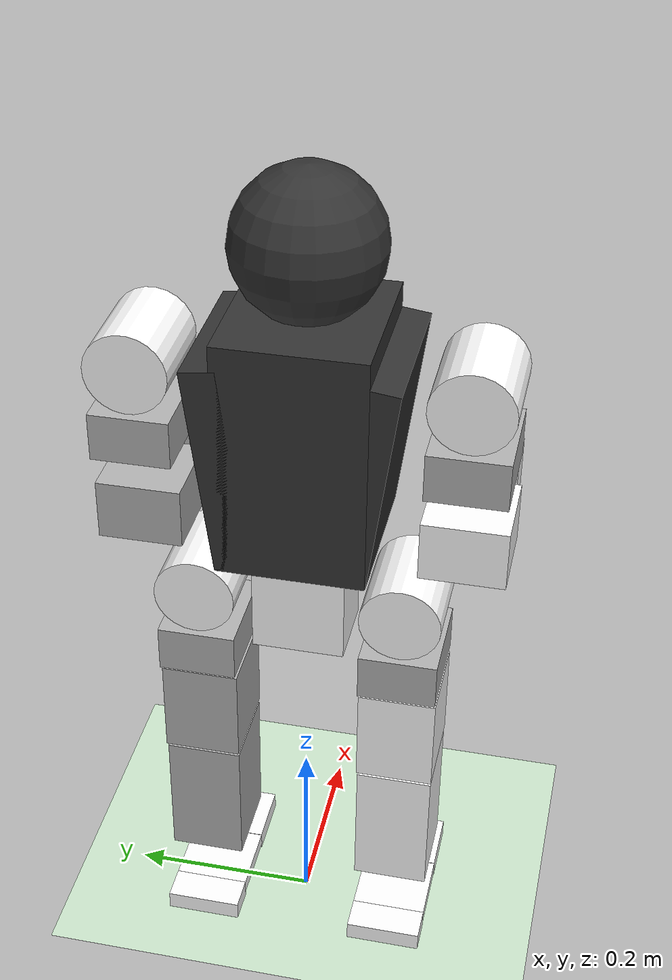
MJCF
<mujoco model="nix2">
  <compiler angle="radian" meshdir="../meshes/"/>

  <default>
      <default class="nix2">
          <geom friction="0.5" margin="0.001"/>
          <joint type="hinge" damping="1" armature="0.1" frictionloss="0.2" limited="true"/>
          <motor ctrlrange="-200 200" />
          <default class="visual">
              <geom type="mesh" contype="0" conaffinity="0" group="2" material="dark"/>
          </default>
          <default class="collision">
              <geom group="0" type="capsule" mass="0" density="0" />
              <default class="foot">
                  <geom type="sphere" priority="1" solimp="0.015 1 0.031" condim="6"  friction="0.8 0.02 0.01" size="0.025" pos="0.019 0 -0.105" quat="1 0 0 0" rgba="0.189804 0.176471 0.129412 1" />
              </default>
          </default>
          <site size="0.001" rgba="0.5 0.5 0.5 0.3" group="4"/>
      </default>
  </default>

<asset>
    <texture name="texplane" type="2d" builtin="checker" rgb1=".2 .3 .4" rgb2=".1 0.15 0.2" width="100" height="100"/>
    <material name="MatPlane" reflectance="0.5" texture="texplane" texrepeat="1 1" texuniform="true"/>
  </asset>

  <worldbody>

    <geom name="floor" friction="1 .1 .1" pos="0 0 0" size="500 500 0.125" type="plane" material="MatPlane" condim="3" conaffinity="1" contype="1" group="2" rgba="0.8 0.9 0.8 1"></geom>
    <light cutoff="100" diffuse="1 1 1" dir="-0 0 -1.3" directional="true" exponent="1" pos="0 0 1.3" specular=".1 .1 .1" castshadow="false"/>
    <body name="pelvis" pos="0 0 0.45" childclass="nix2">
      <inertial pos="-0.0013 0 -0.0009" quat="0 0 0 1" mass="1.6809" diaginertia="0.00307273 0.001530000 0.002932648" />
      <joint name="floating_base_joint" type="free" limited="false" actuatorfrclimited="false"/>
      <site name='imu' size='0.01' pos='0.0 0 0.0'/>
      <geom size="0.03987 0.047687 0.05" pos="-0.00493 0 -0.007691" type="box" rgba="1 1 1 1"/>
      <body name="left_hip_pitch_link" pos="0 0.0615 0">
        <inertial pos="0.0014 0.0409 0.0001" quat="0.697597 0.710927 0.0835395 -0.0310337" mass="0.764" diaginertia="0.000529575 0.00050323 0.000451779"/>
        <joint name="left_hip_pitch_joint" pos="0 0 0" axis="0 1 0" range="-1.6755 1.5708" actuatorfrcrange="-102 102"/>
        <geom size="0.042 0.05" pos="-0.005 0.044758 0" quat="0.707388 0 0.706825 0" type="cylinder" rgba="1 1 1 1"/>
        <body name="left_hip_roll_link" pos="0 0.043758 0">
          <inertial pos="-0.003 0.0002 -0.0608" quat="0.700624 -0.0816652 -0.0895908 0.703158" mass="1.103" diaginertia="0.00197356 0.00161875 0.00126946"/>
          <joint name="left_hip_roll_joint" pos="0 0 0" axis="1 0 0" range="-0.1109 1.8326" actuatorfrcrange="-102 102"/>
          <geom size="0.052 0.0406 0.025" pos="-0.005435 0 -0.071586" type="box" rgba="0.698039 0.698039 0.698039 1"/>
          <body name="left_hip_yaw_link" pos="-0.0037584 0 -0.104">
            <inertial pos="0.0109 -0.0027 -0.0454" quat="0.995761 0.0569623 -0.0592781 0.0412442" mass="0.319" diaginertia="0.000741975 0.000638438 0.000475107"/>
            <joint name="left_hip_yaw_joint" pos="0 0 0" axis="0 0 1" range="-1.2217 1.5708" actuatorfrcrange="-102 102"/>
            <geom size="0.0476 0.0406 0.0535" pos="0.00074 0 -0.053493" type="box" rgba="0.698039 0.698039 0.698039 1"/>
            <body name="left_knee_link" pos="0 0 -0.0915">
              <inertial pos="-0.0027 -0.0018 -0.072" quat="0.904314 -0.00510045 0.0477485 0.424158" mass="1.976" diaginertia="0.00923526 0.00917437 0.00164078"/>
              <joint name="left_knee_joint" pos="0 0 0" axis="0 1 0" range="-0.0873 2.3038" actuatorfrcrange="-102 102"/>
              <geom size="0.0456 0.04 0.074" pos="0.002367 0 -0.095618" type="box" rgba="0.698039 0.698039 0.698039 1"/>
              <body name="left_ankle_pitch_link" pos="-0.011569 -0.0005 -0.19979">
                <inertial pos="0.01 0.0022 0" quat="-0.229583 0.668876 0.229535 0.668737" mass="0.093" diaginertia="5.109e-05 3.32269e-05 2.32841e-05"/>
                <joint name="left_ankle_pitch_joint" pos="0 0 0" axis="0 1 0" range="-0.6109 0.6109" actuatorfrcrange="-20 20"/>
                <body name="left_ankle_roll_link">
                  <inertial pos="0.031 -0.0007 -0.032" quat="0.0157145 0.711885 0.0154349 0.70195" mass="0.439" diaginertia="0.00145821 0.00128445 0.000293239"/>
                  <joint name="left_ankle_roll_joint" pos="0 0 0" axis="1 0 0" range="-0.3491 0.3491" actuatorfrcrange="-20 20"/>
                  <geom size="0.035576 0.0407435 0.010425" pos="0.089703 0 -0.03855" type="box" rgba="1 1 1 1"/>
                  <geom size="0.0184435 0.0407435 0.010425" pos="-0.042964 0 -0.03855" type="box" rgba="1 1 1 1"/>
                  <geom size="0.040497 0.0407435 0.00785" pos="0.014517 0 -0.036496" type="box" rgba="1 1 1 1"/>
                </body>
              </body>
            </body>
          </body>
        </body>
      </body>
      <body name="right_hip_pitch_link" pos="0 -0.0615 0">
        <inertial pos="0.0014 -0.0409 0.001" quat="0.71796 0.691298 0.0258651 -0.0772818" mass="0.764" diaginertia="0.000529554 0.000503605 0.000451709"/>
        <joint name="right_hip_pitch_joint" pos="0 0 0" axis="0 1 0" range="-1.6755 1.5708" actuatorfrcrange="-102 102"/>
        <geom size="0.042 0.05" pos="-0.005 -0.044758 0" quat="0.707388 0 0.706825 0" type="cylinder" rgba="1 1 1 1"/>
        <body name="right_hip_roll_link" pos="0 -0.044758 0">
          <inertial pos="-0.003 -0.0002 -0.0608" quat="0.703282 -0.0894519 -0.0815331 0.700532" mass="1.103" diaginertia="0.00197408 0.00161864 0.00127007"/>
          <joint name="right_hip_roll_joint" pos="0 0 0" axis="1 0 0" range="-1.8326 0.1109" actuatorfrcrange="-102 102"/>
          <geom size="0.052 0.0406 0.025" pos="-0.005435 0 -0.071586" type="box" rgba="0.698039 0.698039 0.698039 1"/>
          <body name="right_hip_yaw_link" pos="-0.0037584 0 -0.104">
            <inertial pos="0.0109 0.0023 -0.0454" quat="0.995751 -0.0570369 -0.059353 -0.041276" mass="0.319" diaginertia="0.000741921 0.000638376 0.000475093"/>
            <joint name="right_hip_yaw_joint" pos="0 0 0" axis="0 0 1" range="-1.5708 1.2217" actuatorfrcrange="-102 102"/>
            <geom size="0.0476 0.0406 0.0535" pos="0.00074 0 -0.053493" type="box" rgba="1 1 1 1"/>
            <body name="right_knee_link" pos="0 0 -0.0915">
              <inertial pos="-0.0027 0.0018 -0.072" quat="0.423797 0.0476679 -0.00505195 0.904488" mass="1.976" diaginertia="0.00923689 0.00917813 0.00163982"/>
              <joint name="right_knee_joint" pos="0 0 0" axis="0 1 0" range="-0.0873 2.0944" actuatorfrcrange="-102 102"/>
              <geom size="0.0456 0.04 0.074" pos="0.002367 0 -0.095618" type="box" rgba="1 1 1 1"/>
              <body name="right_ankle_pitch_link" pos="-0.011569 0.0005 -0.19979">
                <inertial pos="0.01 -0.0021 0" quat="0.225105 0.670283 -0.225172 0.670333" mass="0.093" diaginertia="5.0874e-05 3.30518e-05 2.32442e-05"/>
                <joint name="right_ankle_pitch_joint" pos="0 0 0" axis="0 1 0" range="-0.6109 0.6109" actuatorfrcrange="-20 20"/>
                <body name="right_ankle_roll_link">
                  <inertial pos="0.031 0.0007 -0.032" quat="-0.0154612 0.711892 -0.0151912 0.701955" mass="0.439" diaginertia="0.00145799 0.00128445 0.000293024"/>
                  <joint name="right_ankle_roll_joint" pos="0 0 0" axis="1 0 0" range="-0.3491 0.3491" actuatorfrcrange="-20 20"/>
                  <geom size="0.035576 0.0407435 0.010425" pos="0.089703 0 -0.03855" type="box" rgba="1 1 1 1"/>
                  <geom size="0.0184435 0.0407435 0.010425" pos="-0.042964 0 -0.03855" type="box" rgba="1 1 1 1"/>
                  <geom size="0.040497 0.0407435 0.00785" pos="0.014517 0 -0.036496" type="box" rgba="1 1 1 1"/>
                </body>
              </body>
            </body>
          </body>
        </body>
      </body>
      <body name="torso_link" pos="0 0 0.24781">
        <inertial pos="-0.0098 0 -0.041" quat="0.999959 0.00263813 -0.00862686 0.000748906" mass="6.6386" diaginertia="0.065556 0.0563171 0.032322"/>
        <joint name="torso_joint" pos="0 0 0" axis="0 0 1" range="-1.5708 1.5708" actuatorfrcrange="-102 102"/>
        <geom size="0.082 0.0745 0.124" pos="0 0 -0.064322" type="box" rgba="0.2 0.2 0.2 1"/>
        <geom size="0.075" pos="0 0 0.13" rgba="0.2 0.2 0.2 1"/>
        <geom size="0.082 0.01755 0.1095" pos="0 0.071834 -0.076656" quat="0.997888 -0.0649542 0 0" type="box" rgba="0.2 0.2 0.2 1"/>
        <geom size="0.082 0.01755 0.1095" pos="0 -0.071834 -0.076656" quat="0.997888 0.0649542 0 0" type="box" rgba="0.2 0.2 0.2 1"/>
        <body name="left_shoulder_pitch_link" pos="0 0.1195 0" quat="0.999048 0.0436192 0 0">
          <inertial pos="0.0014 0.0409 0.001" quat="0.697597 0.710927 0.0835395 -0.0310337" mass="0.764" diaginertia="0.000529575 0.00050323 0.000451779"/>
          <joint name="left_shoulder_pitch_joint" pos="0 0 0" axis="0 1 0" range="-2.7925 2.7925" actuatorfrcrange="-102 102"/>
          <geom size="0.042 0.05" pos="-0.005 0.044258 0" quat="0.707388 0 0.706825 0" type="cylinder" rgba="1 1 1 1"/>
          <body name="left_shoulder_roll_link" pos="0 0.043758 0" quat="0.999048 -0.0436192 0 0">
            <inertial pos="-0.003 0.0002 -0.0615" quat="0.699737 -0.0853015 -0.0946645 0.702944" mass="1.02" diaginertia="0.00178437 0.00146549 0.0011584"/>
            <joint name="left_shoulder_roll_joint" pos="0 0 0" axis="1 0 0" range="0 1.8326" actuatorfrcrange="-102 102"/>
            <geom size="0.052 0.0406 0.025" pos="-0.005435 0 -0.071586" type="box" rgba="0.698039 0.698039 0.698039 1"/>
            <body name="left_shoulder_yaw_link" pos="-0.0037584 0 -0.104">
              <inertial pos="3e-05 -0.0008 -0.0392" quat="0.754518 0.00242274 -0.00650456 0.656242" mass="0.811" diaginertia="0.000606513 0.000573814 0.000519355"/>
              <joint name="left_shoulder_yaw_joint" pos="0 0 0" axis="0 0 1" range="-1.885 1.885" actuatorfrcrange="-102 102"/>
              <body name="left_elbow_link" pos="0 0 -0.041258" quat="0.707105 0 -0.707108 0">
                <inertial pos="-0.0096 -0.0029 -0.0741" quat="0.998227 -0.018452 0.0278614 -0.0492504" mass="0.471" diaginertia="0.00250973 0.00242865 0.000569587"/>
                <joint name="left_elbow_joint" pos="0 0 0" axis="0 1 0" range="-0.1025 1.5708" actuatorfrcrange="-102 102"/>
                <geom size="0.03165 0.0435 0.045" pos="-0.0205 -0.000342 -0.005649" type="box" rgba="0.698039 0.698039 0.698039 1"/>
                <geom size="0.0411135 0.037902 0.0216005" pos="-0.006819 0 -0.078835" type="box" rgba="0.698039 0.698039 0.698039 1"/>
                <geom size="0.025 0.015 0.035" pos="-0.006 -0.002 -0.176272" type="box" rgba="0.698039 0.698039 0.698039 1"/>
              </body>
            </body>
          </body>
        </body>
        <body name="right_shoulder_pitch_link" pos="0 -0.1195 0" quat="0.999048 -0.0436192 0 0">
          <inertial pos="0.0014 -0.0409 0.001" quat="0.71796 0.691298 0.0258651 -0.0772818" mass="0.764" diaginertia="0.000529554 0.000503605 0.000451709"/>
          <joint name="right_shoulder_pitch_joint" pos="0 0 0" axis="0 1 0" range="-2.7925 2.7925" actuatorfrcrange="-102 102"/>
          <geom size="0.042 0.05" pos="-0.005 -0.044258 0" quat="0.707388 0 0.706825 0" type="cylinder" rgba="1 1 1 1"/>
          <body name="right_shoulder_roll_link" pos="0 -0.044258 0" quat="0.999048 0.0436192 0 0">
            <inertial pos="-0.003 -0.0002 -0.0615" quat="0.702527 -0.0942444 -0.0854499 0.700195" mass="1.02" diaginertia="0.00178487 0.00146538 0.001159"/>
            <joint name="right_shoulder_roll_joint" pos="0 0 0" axis="1 0 0" range="-1.8326 0" actuatorfrcrange="-102 102"/>
            <geom size="0.052 0.0406 0.025" pos="-0.005435 0 -0.071586" type="box" rgba="0.698039 0.698039 0.698039 1"/>
            <body name="right_shoulder_yaw_link" pos="-0.0037584 0 -0.104">
              <inertial pos="5e-05 0.0008 -0.0392" quat="0.662151 -0.0128514 -0.0027391 0.749255" mass="0.811" diaginertia="0.000606242 0.000573863 0.000519308"/>
              <joint name="right_shoulder_yaw_joint" pos="0 0 0" axis="0 0 1" range="-1.885 1.885" actuatorfrcrange="-102 102"/>
              <body name="right_elbow_link" pos="0 0 -0.041258" quat="0.707105 0 -0.707108 0">
                <inertial pos="-0.0096 0.0029 -0.0741" quat="0.998226 0.0184509 0.0278611 0.0492831" mass="0.471" diaginertia="0.00250973 0.00242865 0.000569587"/>
                <joint name="right_elbow_joint" pos="0 0 0" axis="0 1 0" range="-0.1025 1.5708" actuatorfrcrange="-102 102"/>
                <geom size="0.03165 0.0435 0.045" pos="-0.0205 0.000342 -0.005649" type="box" rgba="1 1 1 1"/>
                <geom size="0.0411135 0.037902 0.0216005" pos="-0.006819 0 -0.078835" type="box" rgba="1 1 1 1"/>
                <geom size="0.025 0.015 0.035" pos="-0.006 0.002 -0.176272" type="box" rgba="1 1 1 1"/>
              </body>
            </body>
          </body>
        </body>
      </body>
    </body>
  </worldbody>
  <actuator>
    <motor name="left_hip_pitch_joint" joint="left_hip_pitch_joint" gear="1" ctrllimited="true" ctrlrange="-100 100"/>
    <motor name="left_hip_roll_joint" joint="left_hip_roll_joint" gear="1" ctrllimited="true" ctrlrange="-100 100"/>
    <motor name="left_hip_yaw_joint" joint="left_hip_yaw_joint" gear="1" ctrllimited="true" ctrlrange="-100 100" />
    <motor name="left_knee_joint" joint="left_knee_joint" gear="1" ctrllimited="true" ctrlrange="-100 100"/>
    <motor name="left_ankle_pitch_joint" joint="left_ankle_pitch_joint" gear="1" ctrllimited="true" ctrlrange="-100 100"/>
    <motor name="left_ankle_roll_joint" joint="left_ankle_roll_joint" gear="1" ctrllimited="true" ctrlrange="-100 100"/>

    <motor name="right_hip_pitch_joint" joint="right_hip_pitch_joint" gear="1" ctrllimited="true" ctrlrange="-100 100"/>
    <motor name="right_hip_roll_joint" joint="right_hip_roll_joint" gear="1" ctrllimited="true" ctrlrange="-100 100"/>
    <motor name="right_hip_yaw_joint" joint="right_hip_yaw_joint" gear="1" ctrllimited="true" ctrlrange="-100 100"/>
    <motor name="right_knee_joint" joint="right_knee_joint" gear="1" ctrllimited="true" ctrlrange="-100 100" />
    <motor name="right_ankle_pitch_joint" joint="right_ankle_pitch_joint" gear="1" ctrllimited="true" ctrlrange="-100 100" />
    <motor name="right_ankle_roll_joint" joint="right_ankle_roll_joint" gear="1" ctrllimited="true" ctrlrange="-100 100" />

    <motor name="torso_joint" joint="torso_joint" gear="1" ctrllimited="true" ctrlrange="-100 100" />

    <motor name="left_shoulder_pitch_joint" joint="left_shoulder_pitch_joint" gear="1" ctrllimited="true" ctrlrange="-100 100" />
    <motor name="left_shoulder_roll_joint" joint="left_shoulder_roll_joint" gear="1" ctrllimited="true" ctrlrange="-100 100" />
    <motor name="left_shoulder_yaw_joint" joint="left_shoulder_yaw_joint" gear="1" ctrllimited="true" ctrlrange="-100 100" />
    <motor name="left_elbow_joint" joint="left_elbow_joint" gear="1" ctrllimited="true" ctrlrange="-100 100" />

    <motor name="right_shoulder_pitch_joint" joint="right_shoulder_pitch_joint" gear="1" ctrllimited="true" ctrlrange="-100 100" />
    <motor name="right_shoulder_roll_joint" joint="right_shoulder_roll_joint" gear="1" ctrllimited="true" ctrlrange="-100 100" />
    <motor name="right_shoulder_yaw_joint" joint="right_shoulder_yaw_joint" gear="1" ctrllimited="true" ctrlrange="-100 100" />
    <motor name="right_elbow_joint" joint="right_elbow_joint" gear="1" ctrllimited="true" ctrlrange="-100 100" />
  </actuator>

  <sensor>
    <framequat     name='orientation' objtype='site' noise='0.001' objname='imu'/>
    <framepos     name='position' objtype='site' noise='0.001' objname='imu'/>
    <gyro          name='angular-velocity'    site='imu' noise='0.005' cutoff='34.9'/>
    <velocimeter   name='linear-velocity'     site='imu' noise='0.001' cutoff='30'/>
    <accelerometer name='linear-acceleration' site='imu' noise='0.005' cutoff='157'/>
    <magnetometer  name='magnetometer'        site='imu'/>

    <jointactuatorfrc name="left_hip_pitch_force" joint="left_hip_pitch_joint"/>
    <jointactuatorfrc name="left_hip_roll_force" joint="left_hip_roll_joint"/>
    <jointactuatorfrc name="left_hip_yaw_force" joint="left_hip_yaw_joint"/>
    <jointactuatorfrc name="left_knee_force" joint="left_knee_joint"/>
    <jointactuatorfrc name="left_ankle_pitch_force" joint="left_ankle_pitch_joint"/>
    <jointactuatorfrc name="left_ankle_roll_force" joint="left_ankle_roll_joint"/>

    <jointactuatorfrc name="right_hip_pitch_force" joint="right_hip_pitch_joint"/>
    <jointactuatorfrc name="right_hip_roll_force" joint="right_hip_roll_joint"/>
    <jointactuatorfrc name="right_hip_yaw_force" joint="right_hip_yaw_joint"/>
    <jointactuatorfrc name="right_knee_force" joint="right_knee_joint"/>
    <jointactuatorfrc name="right_ankle_pitch_force" joint="right_ankle_pitch_joint"/>
    <jointactuatorfrc name="right_ankle_roll_force" joint="right_ankle_roll_joint"/>

    <jointactuatorfrc name="torso_force" joint="torso_joint"/>

    <jointactuatorfrc name="left_shoulder_pitch_force" joint="left_shoulder_pitch_joint"/>
    <jointactuatorfrc name="left_shoulder_roll_force" joint="left_shoulder_roll_joint"/>
    <jointactuatorfrc name="left_shoulder_yaw_force" joint="left_shoulder_yaw_joint"/>
    <jointactuatorfrc name="left_elbow_force" joint="left_elbow_joint"/>

    <jointactuatorfrc name="right_shoulder_pitch_force" joint="right_shoulder_pitch_joint"/>
    <jointactuatorfrc name="right_shoulder_roll_force" joint="right_shoulder_roll_joint"/>
    <jointactuatorfrc name="right_shoulder_yaw_force" joint="right_shoulder_yaw_joint"/>
    <jointactuatorfrc name="right_elbow_force" joint="right_elbow_joint"/>
  </sensor>
</mujoco>
